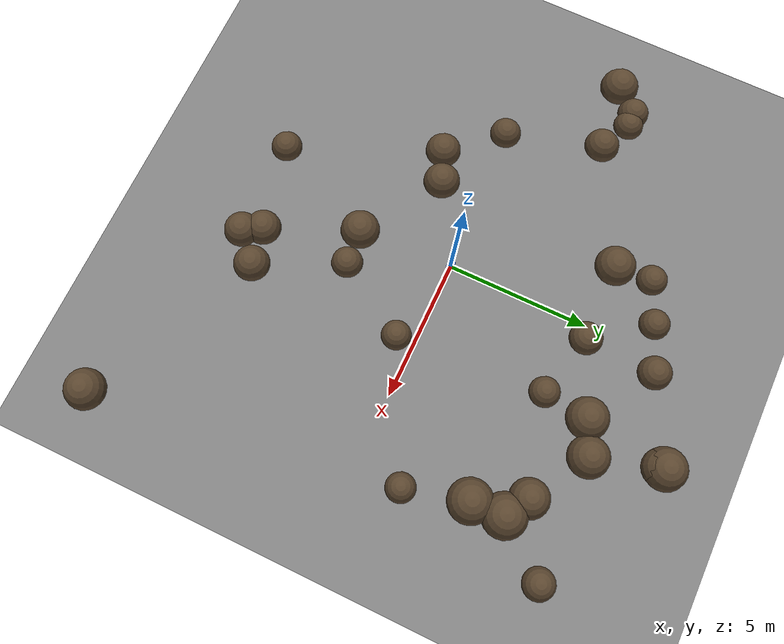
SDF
<?xml version="1.0"?>
<sdf version="1.9">

  <world name="s1_world">

    <physics name="physics" type="ignored">
      <max_step_size>0.001</max_step_size>
      <real_time_factor>1.0</real_time_factor>
    </physics>

    <plugin
      filename="gz-sim-physics-system"
      name="gz::sim::systems::Physics">
    </plugin>

    <plugin
      filename="gz-sim-user-commands-system"
      name="gz::sim::systems::UserCommands">
    </plugin>

    <plugin
      filename="gz-sim-scene-broadcaster-system"
      name="gz::sim::systems::SceneBroadcaster">
    </plugin>

    <plugin
      filename="gz-sim-sensors-system"
      name="gz::sim::systems::Sensors">
      <render_engine>ogre2</render_engine>
    </plugin>

    <!-- LIGHT -->

    <light type="directional" name="sun">
      <pose>0 0 10 0 0 0</pose>
      <diffuse>0.8 0.8 0.8 1</diffuse>
      <specular>0.2 0.2 0.2 1</specular>
      <direction>-0.5 0.1 -0.9</direction>
    </light>

    <!-- GROUND -->

    <model name="ground">
      <static>true</static>

      <link name="ground_link">

        <collision name="collision">
          <geometry>
            <plane>
              <normal>0 0 1</normal>
              <size>30 30</size>
            </plane>
          </geometry>
        </collision>

        <visual name="visual">
          <geometry>
            <plane>
              <normal>0 0 1</normal>
              <size>30 30</size>
            </plane>
          </geometry>

          <material>
            <ambient>0.5 0.5 0.5 1</ambient>
            <diffuse>0.5 0.5 0.5 1</diffuse>
          </material>
        </visual>

      </link>
    </model>

    <!-- ROBOT -->

    <model name="robot" canonical_link="base_link">

      <pose>0 0 0.125 0 0 0</pose>

      <link name="base_link">

        <gravity>true</gravity>

        <inertial>
          <mass>5.0</mass>

          <inertia>
            <ixx>0.2</ixx>
            <iyy>0.2</iyy>
            <izz>0.2</izz>
            <ixy>0</ixy>
            <ixz>0</ixz>
            <iyz>0</iyz>
          </inertia>
        </inertial>

        <collision name="collision">
          <geometry>
            <box>
              <size>0.25 0.25 0.25</size>
            </box>
          </geometry>
        </collision>

        <visual name="visual">
          <geometry>
            <box>
              <size>0.25 0.25 0.25</size>
            </box>
          </geometry>

          <material>
            <ambient>0.1 0.3 0.9 1</ambient>
            <diffuse>0.1 0.3 0.9 1</diffuse>
          </material>
        </visual>

        <!-- LIDAR -->

        <sensor name="lidar" type="gpu_lidar">

          <pose>0 0 0.30 0 0 0</pose>

          <topic>/scan</topic>

          <update_rate>10</update_rate>

          <ray>
            <scan>
              <horizontal>
                <samples>720</samples>
                <resolution>1</resolution>

                <min_angle>-3.14159265</min_angle>
                <max_angle>3.14159265</max_angle>
              </horizontal>

              <vertical>
                <samples>1</samples>
                <resolution>1</resolution>
                <min_angle>0</min_angle>
                <max_angle>0</max_angle>
              </vertical>
            </scan>

            <range>
              <min>0.10</min>
              <max>12.0</max>
              <resolution>0.01</resolution>
            </range>
          </ray>

          <always_on>true</always_on>

          <visualize>true</visualize>

        </sensor>

      </link>

      <!-- Invisible guide links form an x/y/yaw joint chain to the world.
           This physically locks z, roll and pitch while preserving planar motion. -->
      <link name="ground_x_link">
        <inertial><mass>0.01</mass><inertia>
          <ixx>0.001</ixx><iyy>0.001</iyy><izz>0.001</izz>
        </inertia></inertial>
      </link>
      <link name="ground_y_link">
        <inertial><mass>0.01</mass><inertia>
          <ixx>0.001</ixx><iyy>0.001</iyy><izz>0.001</izz>
        </inertia></inertial>
      </link>
      <joint name="ground_x" type="prismatic">
        <parent>world</parent><child>ground_x_link</child>
        <axis><xyz>1 0 0</xyz></axis>
      </joint>
      <joint name="ground_y" type="prismatic">
        <parent>ground_x_link</parent><child>ground_y_link</child>
        <axis><xyz>0 1 0</xyz></axis>
      </joint>
      <joint name="ground_yaw" type="revolute">
        <parent>ground_y_link</parent><child>base_link</child>
        <axis><xyz>0 0 1</xyz></axis>
      </joint>

      <plugin
        filename="libs1_planar_drive.so"
        name="s1::PlanarDrive">

        <topic>/model/robot/cmd_vel</topic>

      </plugin>

      <plugin
        filename="gz-sim-odometry-publisher-system"
        name="gz::sim::systems::OdometryPublisher">

        <odom_frame>odom</odom_frame>
        <robot_base_frame>base_link</robot_base_frame>

        <odom_publish_frequency>30</odom_publish_frequency>

        <odom_topic>/model/robot/odometry</odom_topic>

      </plugin>

    </model>

    <model name="rock_0">
      <static>true</static>
      <pose>9.1605 -9.2256 0 0 0 0</pose>
      <link name="link">

        <collision name="collision">
          <geometry>
            <sphere>
              <radius>0.7253</radius>
            </sphere>
          </geometry>
        </collision>

        <visual name="visual">
          <geometry>
            <sphere>
              <radius>0.7253</radius>
            </sphere>
          </geometry>

          <material>
            <ambient>0.30 0.22 0.15 1</ambient>
            <diffuse>0.35 0.27 0.18 1</diffuse>
          </material>
        </visual>

      </link>
    </model>

    <model name="rock_1">
      <static>true</static>
      <pose>-5.4416 -0.2707 0 0 0 0</pose>
      <link name="link">

        <collision name="collision">
          <geometry>
            <sphere>
              <radius>0.5511</radius>
            </sphere>
          </geometry>
        </collision>

        <visual name="visual">
          <geometry>
            <sphere>
              <radius>0.5511</radius>
            </sphere>
          </geometry>

          <material>
            <ambient>0.30 0.22 0.15 1</ambient>
            <diffuse>0.35 0.27 0.18 1</diffuse>
          </material>
        </visual>

      </link>
    </model>

    <model name="rock_2">
      <static>true</static>
      <pose>1.8954 -7.1321 0 0 0 0</pose>
      <link name="link">

        <collision name="collision">
          <geometry>
            <sphere>
              <radius>0.6268</radius>
            </sphere>
          </geometry>
        </collision>

        <visual name="visual">
          <geometry>
            <sphere>
              <radius>0.6268</radius>
            </sphere>
          </geometry>

          <material>
            <ambient>0.30 0.22 0.15 1</ambient>
            <diffuse>0.35 0.27 0.18 1</diffuse>
          </material>
        </visual>

      </link>
    </model>

    <model name="rock_3">
      <static>true</static>
      <pose>0.3677 5.1871 0 0 0 0</pose>
      <link name="link">

        <collision name="collision">
          <geometry>
            <sphere>
              <radius>0.5827</radius>
            </sphere>
          </geometry>
        </collision>

        <visual name="visual">
          <geometry>
            <sphere>
              <radius>0.5827</radius>
            </sphere>
          </geometry>

          <material>
            <ambient>0.30 0.22 0.15 1</ambient>
            <diffuse>0.35 0.27 0.18 1</diffuse>
          </material>
        </visual>

      </link>
    </model>

    <model name="rock_4">
      <static>true</static>
      <pose>-2.5048 6.4603 0 0 0 0</pose>
      <link name="link">

        <collision name="collision">
          <geometry>
            <sphere>
              <radius>0.5350</radius>
            </sphere>
          </geometry>
        </collision>

        <visual name="visual">
          <geometry>
            <sphere>
              <radius>0.5350</radius>
            </sphere>
          </geometry>

          <material>
            <ambient>0.30 0.22 0.15 1</ambient>
            <diffuse>0.35 0.27 0.18 1</diffuse>
          </material>
        </visual>

      </link>
    </model>

    <model name="rock_5">
      <static>true</static>
      <pose>-1.0774 7.1010 0 0 0 0</pose>
      <link name="link">

        <collision name="collision">
          <geometry>
            <sphere>
              <radius>0.5339</radius>
            </sphere>
          </geometry>
        </collision>

        <visual name="visual">
          <geometry>
            <sphere>
              <radius>0.5339</radius>
            </sphere>
          </geometry>

          <material>
            <ambient>0.30 0.22 0.15 1</ambient>
            <diffuse>0.35 0.27 0.18 1</diffuse>
          </material>
        </visual>

      </link>
    </model>

    <model name="rock_6">
      <static>true</static>
      <pose>4.0479 6.7540 0 0 0 0</pose>
      <link name="link">

        <collision name="collision">
          <geometry>
            <sphere>
              <radius>0.7291</radius>
            </sphere>
          </geometry>
        </collision>

        <visual name="visual">
          <geometry>
            <sphere>
              <radius>0.7291</radius>
            </sphere>
          </geometry>

          <material>
            <ambient>0.30 0.22 0.15 1</ambient>
            <diffuse>0.35 0.27 0.18 1</diffuse>
          </material>
        </visual>

      </link>
    </model>

    <model name="rock_7">
      <static>true</static>
      <pose>0.1326 -3.3951 0 0 0 0</pose>
      <link name="link">

        <collision name="collision">
          <geometry>
            <sphere>
              <radius>0.6906</radius>
            </sphere>
          </geometry>
        </collision>

        <visual name="visual">
          <geometry>
            <sphere>
              <radius>0.6906</radius>
            </sphere>
          </geometry>

          <material>
            <ambient>0.30 0.22 0.15 1</ambient>
            <diffuse>0.35 0.27 0.18 1</diffuse>
          </material>
        </visual>

      </link>
    </model>

    <model name="rock_8">
      <static>true</static>
      <pose>-2.7655 -1.5810 0 0 0 0</pose>
      <link name="link">

        <collision name="collision">
          <geometry>
            <sphere>
              <radius>0.6466</radius>
            </sphere>
          </geometry>
        </collision>

        <visual name="visual">
          <geometry>
            <sphere>
              <radius>0.6466</radius>
            </sphere>
          </geometry>

          <material>
            <ambient>0.30 0.22 0.15 1</ambient>
            <diffuse>0.35 0.27 0.18 1</diffuse>
          </material>
        </visual>

      </link>
    </model>

    <model name="rock_9">
      <static>true</static>
      <pose>3.0279 -0.6530 0 0 0 0</pose>
      <link name="link">

        <collision name="collision">
          <geometry>
            <sphere>
              <radius>0.5246</radius>
            </sphere>
          </geometry>
        </collision>

        <visual name="visual">
          <geometry>
            <sphere>
              <radius>0.5246</radius>
            </sphere>
          </geometry>

          <material>
            <ambient>0.30 0.22 0.15 1</ambient>
            <diffuse>0.35 0.27 0.18 1</diffuse>
          </material>
        </visual>

      </link>
    </model>

    <model name="rock_10">
      <static>true</static>
      <pose>-8.1380 3.5905 0 0 0 0</pose>
      <link name="link">

        <collision name="collision">
          <geometry>
            <sphere>
              <radius>0.5511</radius>
            </sphere>
          </geometry>
        </collision>

        <visual name="visual">
          <geometry>
            <sphere>
              <radius>0.5511</radius>
            </sphere>
          </geometry>

          <material>
            <ambient>0.30 0.22 0.15 1</ambient>
            <diffuse>0.35 0.27 0.18 1</diffuse>
          </material>
        </visual>

      </link>
    </model>

    <model name="rock_11">
      <static>true</static>
      <pose>3.3644 9.0336 0 0 0 0</pose>
      <link name="link">

        <collision name="collision">
          <geometry>
            <sphere>
              <radius>0.6777</radius>
            </sphere>
          </geometry>
        </collision>

        <visual name="visual">
          <geometry>
            <sphere>
              <radius>0.6777</radius>
            </sphere>
          </geometry>

          <material>
            <ambient>0.30 0.22 0.15 1</ambient>
            <diffuse>0.35 0.27 0.18 1</diffuse>
          </material>
        </visual>

      </link>
    </model>

    <model name="rock_12">
      <static>true</static>
      <pose>2.6703 4.6308 0 0 0 0</pose>
      <link name="link">

        <collision name="collision">
          <geometry>
            <sphere>
              <radius>0.5367</radius>
            </sphere>
          </geometry>
        </collision>

        <visual name="visual">
          <geometry>
            <sphere>
              <radius>0.5367</radius>
            </sphere>
          </geometry>

          <material>
            <ambient>0.30 0.22 0.15 1</ambient>
            <diffuse>0.35 0.27 0.18 1</diffuse>
          </material>
        </visual>

      </link>
    </model>

    <model name="rock_13">
      <static>true</static>
      <pose>-7.6139 3.6113 0 0 0 0</pose>
      <link name="link">

        <collision name="collision">
          <geometry>
            <sphere>
              <radius>0.5285</radius>
            </sphere>
          </geometry>
        </collision>

        <visual name="visual">
          <geometry>
            <sphere>
              <radius>0.5285</radius>
            </sphere>
          </geometry>

          <material>
            <ambient>0.30 0.22 0.15 1</ambient>
            <diffuse>0.35 0.27 0.18 1</diffuse>
          </material>
        </visual>

      </link>
    </model>

    <model name="rock_14">
      <static>true</static>
      <pose>1.4063 -3.2850 0 0 0 0</pose>
      <link name="link">

        <collision name="collision">
          <geometry>
            <sphere>
              <radius>0.5554</radius>
            </sphere>
          </geometry>
        </collision>

        <visual name="visual">
          <geometry>
            <sphere>
              <radius>0.5554</radius>
            </sphere>
          </geometry>

          <material>
            <ambient>0.30 0.22 0.15 1</ambient>
            <diffuse>0.35 0.27 0.18 1</diffuse>
          </material>
        </visual>

      </link>
    </model>

    <model name="rock_15">
      <static>true</static>
      <pose>8.4217 6.8264 0 0 0 0</pose>
      <link name="link">

        <collision name="collision">
          <geometry>
            <sphere>
              <radius>0.5600</radius>
            </sphere>
          </geometry>
        </collision>

        <visual name="visual">
          <geometry>
            <sphere>
              <radius>0.5600</radius>
            </sphere>
          </geometry>

          <material>
            <ambient>0.30 0.22 0.15 1</ambient>
            <diffuse>0.35 0.27 0.18 1</diffuse>
          </material>
        </visual>

      </link>
    </model>

    <model name="rock_16">
      <static>true</static>
      <pose>2.8566 -6.2478 0 0 0 0</pose>
      <link name="link">

        <collision name="collision">
          <geometry>
            <sphere>
              <radius>0.6431</radius>
            </sphere>
          </geometry>
        </collision>

        <visual name="visual">
          <geometry>
            <sphere>
              <radius>0.6431</radius>
            </sphere>
          </geometry>

          <material>
            <ambient>0.30 0.22 0.15 1</ambient>
            <diffuse>0.35 0.27 0.18 1</diffuse>
          </material>
        </visual>

      </link>
    </model>

    <model name="rock_17">
      <static>true</static>
      <pose>6.9982 3.8413 0 0 0 0</pose>
      <link name="link">

        <collision name="collision">
          <geometry>
            <sphere>
              <radius>0.7867</radius>
            </sphere>
          </geometry>
        </collision>

        <visual name="visual">
          <geometry>
            <sphere>
              <radius>0.7867</radius>
            </sphere>
          </geometry>

          <material>
            <ambient>0.30 0.22 0.15 1</ambient>
            <diffuse>0.35 0.27 0.18 1</diffuse>
          </material>
        </visual>

      </link>
    </model>

    <model name="rock_18">
      <static>true</static>
      <pose>7.5757 1.6260 0 0 0 0</pose>
      <link name="link">

        <collision name="collision">
          <geometry>
            <sphere>
              <radius>0.5230</radius>
            </sphere>
          </geometry>
        </collision>

        <visual name="visual">
          <geometry>
            <sphere>
              <radius>0.5230</radius>
            </sphere>
          </geometry>

          <material>
            <ambient>0.30 0.22 0.15 1</ambient>
            <diffuse>0.35 0.27 0.18 1</diffuse>
          </material>
        </visual>

      </link>
    </model>

    <model name="rock_19">
      <static>true</static>
      <pose>3.3417 9.1512 0 0 0 0</pose>
      <link name="link">

        <collision name="collision">
          <geometry>
            <sphere>
              <radius>0.7524</radius>
            </sphere>
          </geometry>
        </collision>

        <visual name="visual">
          <geometry>
            <sphere>
              <radius>0.7524</radius>
            </sphere>
          </geometry>

          <material>
            <ambient>0.30 0.22 0.15 1</ambient>
            <diffuse>0.35 0.27 0.18 1</diffuse>
          </material>
        </visual>

      </link>
    </model>

    <model name="rock_20">
      <static>true</static>
      <pose>0.4955 7.7096 0 0 0 0</pose>
      <link name="link">

        <collision name="collision">
          <geometry>
            <sphere>
              <radius>0.5881</radius>
            </sphere>
          </geometry>
        </collision>

        <visual name="visual">
          <geometry>
            <sphere>
              <radius>0.5881</radius>
            </sphere>
          </geometry>

          <material>
            <ambient>0.30 0.22 0.15 1</ambient>
            <diffuse>0.35 0.27 0.18 1</diffuse>
          </material>
        </visual>

      </link>
    </model>

    <model name="rock_21">
      <static>true</static>
      <pose>-3.8686 -2.0193 0 0 0 0</pose>
      <link name="link">

        <collision name="collision">
          <geometry>
            <sphere>
              <radius>0.6255</radius>
            </sphere>
          </geometry>
        </collision>

        <visual name="visual">
          <geometry>
            <sphere>
              <radius>0.6255</radius>
            </sphere>
          </geometry>

          <material>
            <ambient>0.30 0.22 0.15 1</ambient>
            <diffuse>0.35 0.27 0.18 1</diffuse>
          </material>
        </visual>

      </link>
    </model>

    <model name="rock_22">
      <static>true</static>
      <pose>6.1016 5.5318 0 0 0 0</pose>
      <link name="link">

        <collision name="collision">
          <geometry>
            <sphere>
              <radius>0.6950</radius>
            </sphere>
          </geometry>
        </collision>

        <visual name="visual">
          <geometry>
            <sphere>
              <radius>0.6950</radius>
            </sphere>
          </geometry>

          <material>
            <ambient>0.30 0.22 0.15 1</ambient>
            <diffuse>0.35 0.27 0.18 1</diffuse>
          </material>
        </visual>

      </link>
    </model>

    <model name="rock_23">
      <static>true</static>
      <pose>6.9468 5.0188 0 0 0 0</pose>
      <link name="link">

        <collision name="collision">
          <geometry>
            <sphere>
              <radius>0.7918</radius>
            </sphere>
          </geometry>
        </collision>

        <visual name="visual">
          <geometry>
            <sphere>
              <radius>0.7918</radius>
            </sphere>
          </geometry>

          <material>
            <ambient>0.30 0.22 0.15 1</ambient>
            <diffuse>0.35 0.27 0.18 1</diffuse>
          </material>
        </visual>

      </link>
    </model>

    <model name="rock_24">
      <static>true</static>
      <pose>-6.4776 3.0414 0 0 0 0</pose>
      <link name="link">

        <collision name="collision">
          <geometry>
            <sphere>
              <radius>0.6139</radius>
            </sphere>
          </geometry>
        </collision>

        <visual name="visual">
          <geometry>
            <sphere>
              <radius>0.6139</radius>
            </sphere>
          </geometry>

          <material>
            <ambient>0.30 0.22 0.15 1</ambient>
            <diffuse>0.35 0.27 0.18 1</diffuse>
          </material>
        </visual>

      </link>
    </model>

    <model name="rock_25">
      <static>true</static>
      <pose>-1.5985 -7.1371 0 0 0 0</pose>
      <link name="link">

        <collision name="collision">
          <geometry>
            <sphere>
              <radius>0.5515</radius>
            </sphere>
          </geometry>
        </collision>

        <visual name="visual">
          <geometry>
            <sphere>
              <radius>0.5515</radius>
            </sphere>
          </geometry>

          <material>
            <ambient>0.30 0.22 0.15 1</ambient>
            <diffuse>0.35 0.27 0.18 1</diffuse>
          </material>
        </visual>

      </link>
    </model>

    <model name="rock_26">
      <static>true</static>
      <pose>-8.9198 2.7554 0 0 0 0</pose>
      <link name="link">

        <collision name="collision">
          <geometry>
            <sphere>
              <radius>0.6811</radius>
            </sphere>
          </geometry>
        </collision>

        <visual name="visual">
          <geometry>
            <sphere>
              <radius>0.6811</radius>
            </sphere>
          </geometry>

          <material>
            <ambient>0.30 0.22 0.15 1</ambient>
            <diffuse>0.35 0.27 0.18 1</diffuse>
          </material>
        </visual>

      </link>
    </model>

    <model name="rock_27">
      <static>true</static>
      <pose>-2.4489 5.1405 0 0 0 0</pose>
      <link name="link">

        <collision name="collision">
          <geometry>
            <sphere>
              <radius>0.7097</radius>
            </sphere>
          </geometry>
        </collision>

        <visual name="visual">
          <geometry>
            <sphere>
              <radius>0.7097</radius>
            </sphere>
          </geometry>

          <material>
            <ambient>0.30 0.22 0.15 1</ambient>
            <diffuse>0.35 0.27 0.18 1</diffuse>
          </material>
        </visual>

      </link>
    </model>

    <model name="rock_28">
      <static>true</static>
      <pose>1.5116 -6.4835 0 0 0 0</pose>
      <link name="link">

        <collision name="collision">
          <geometry>
            <sphere>
              <radius>0.6255</radius>
            </sphere>
          </geometry>
        </collision>

        <visual name="visual">
          <geometry>
            <sphere>
              <radius>0.6255</radius>
            </sphere>
          </geometry>

          <material>
            <ambient>0.30 0.22 0.15 1</ambient>
            <diffuse>0.35 0.27 0.18 1</diffuse>
          </material>
        </visual>

      </link>
    </model>

    <model name="rock_29">
      <static>true</static>
      <pose>2.8768 6.2488 0 0 0 0</pose>
      <link name="link">

        <collision name="collision">
          <geometry>
            <sphere>
              <radius>0.7389</radius>
            </sphere>
          </geometry>
        </collision>

        <visual name="visual">
          <geometry>
            <sphere>
              <radius>0.7389</radius>
            </sphere>
          </geometry>

          <material>
            <ambient>0.30 0.22 0.15 1</ambient>
            <diffuse>0.35 0.27 0.18 1</diffuse>
          </material>
        </visual>

      </link>
    </model>

  </world>

</sdf>
